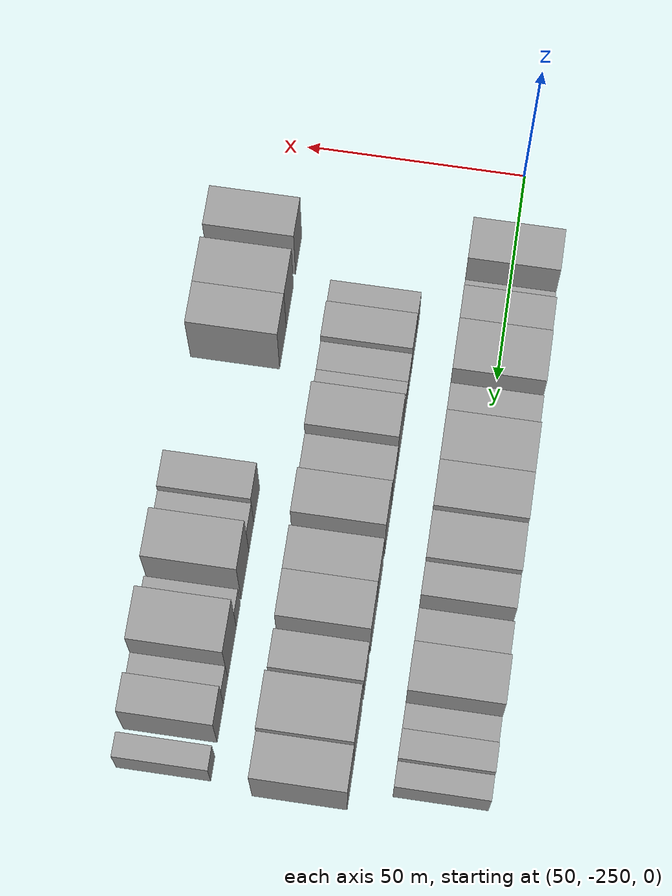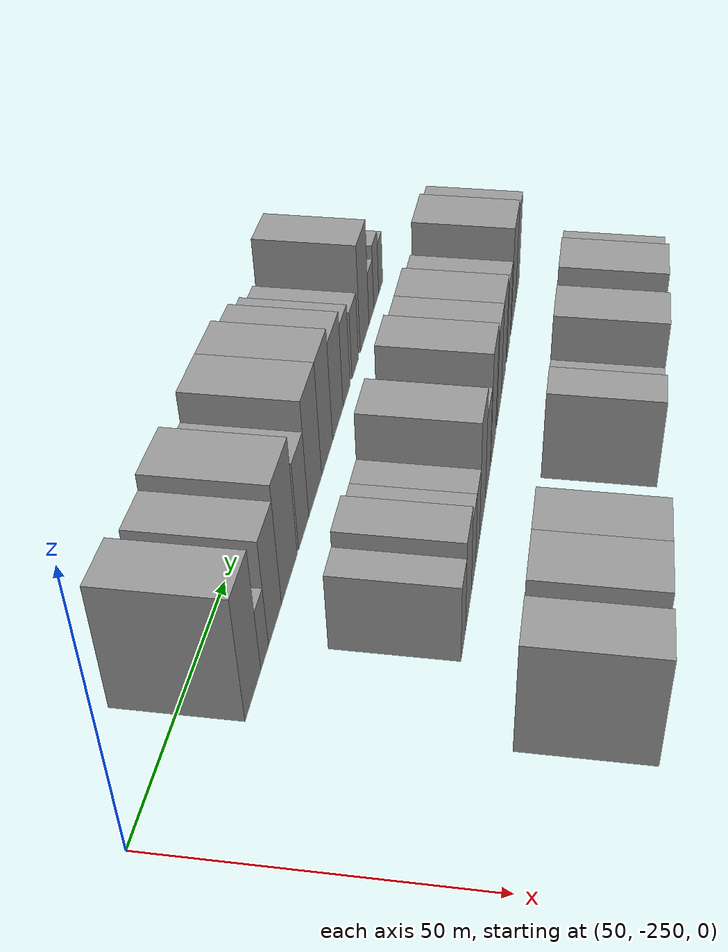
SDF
<sdf version="1.6">
 <world name="default">
  <model name="building_15">
   <static>1</static>
   <pose>50.0000 -222.4630 0 0.000000 0.000000 0.000000</pose>
   <link name="link">
    <pose>0 0 12.00 0 0 0</pose>
    <collision name="collision"><geometry><box><size>20.0000 9.6509 24.0000</size></box></geometry></collision>
    <visual name="visual">
     <cast_shadows>0</cast_shadows>
     <geometry><box><size>20.0000 9.6509 24.0000</size></box></geometry>
     <material>
      <script>
       <uri>model://grey_wall/materials/scripts</uri>
       <uri>model://grey_wall/materials/textures</uri>
       <name>vrc/grey_wall</name>
      </script>
     </material>
    </visual>
   </link>
  </model>
  <model name="building_16">
   <static>1</static>
   <pose>50.0000 -215.1452 0 0.000000 0.000000 0.000000</pose>
   <link name="link">
    <pose>0 0 6.00 0 0 0</pose>
    <collision name="collision"><geometry><box><size>20.0000 4.9846 12.0000</size></box></geometry></collision>
    <visual name="visual">
     <cast_shadows>0</cast_shadows>
     <geometry><box><size>20.0000 4.9846 12.0000</size></box></geometry>
     <material>
      <script>
       <uri>model://grey_wall/materials/scripts</uri>
       <uri>model://grey_wall/materials/textures</uri>
       <name>vrc/grey_wall</name>
      </script>
     </material>
    </visual>
   </link>
  </model>
  <model name="building_17">
   <static>1</static>
   <pose>50.0000 -208.2142 0 0.000000 0.000000 0.000000</pose>
   <link name="link">
    <pose>0 0 10.50 0 0 0</pose>
    <collision name="collision"><geometry><box><size>20.0000 8.8775 21.0000</size></box></geometry></collision>
    <visual name="visual">
     <cast_shadows>0</cast_shadows>
     <geometry><box><size>20.0000 8.8775 21.0000</size></box></geometry>
     <material>
      <script>
       <uri>model://grey_wall/materials/scripts</uri>
       <uri>model://grey_wall/materials/textures</uri>
       <name>vrc/grey_wall</name>
      </script>
     </material>
    </visual>
   </link>
  </model>
  <model name="building_18">
   <static>1</static>
   <pose>50.0000 -197.9803 0 0.000000 0.000000 0.000000</pose>
   <link name="link">
    <pose>0 0 12.00 0 0 0</pose>
    <collision name="collision"><geometry><box><size>20.0000 11.5903 24.0000</size></box></geometry></collision>
    <visual name="visual">
     <cast_shadows>0</cast_shadows>
     <geometry><box><size>20.0000 11.5903 24.0000</size></box></geometry>
     <material>
      <script>
       <uri>model://grey_wall/materials/scripts</uri>
       <uri>model://grey_wall/materials/textures</uri>
       <name>vrc/grey_wall</name>
      </script>
     </material>
    </visual>
   </link>
  </model>
  <model name="building_19">
   <static>1</static>
   <pose>50.0000 -187.0728 0 0.000000 0.000000 0.000000</pose>
   <link name="link">
    <pose>0 0 9.00 0 0 0</pose>
    <collision name="collision"><geometry><box><size>20.0000 8.2246 18.0000</size></box></geometry></collision>
    <visual name="visual">
     <cast_shadows>0</cast_shadows>
     <geometry><box><size>20.0000 8.2246 18.0000</size></box></geometry>
     <material>
      <script>
       <uri>model://grey_wall/materials/scripts</uri>
       <uri>model://grey_wall/materials/textures</uri>
       <name>vrc/grey_wall</name>
      </script>
     </material>
    </visual>
   </link>
  </model>
  <model name="building_20">
   <static>1</static>
   <pose>50.0000 -177.4510 0 0.000000 0.000000 0.000000</pose>
   <link name="link">
    <pose>0 0 12.00 0 0 0</pose>
    <collision name="collision"><geometry><box><size>20.0000 11.0190 24.0000</size></box></geometry></collision>
    <visual name="visual">
     <cast_shadows>0</cast_shadows>
     <geometry><box><size>20.0000 11.0190 24.0000</size></box></geometry>
     <material>
      <script>
       <uri>model://grey_wall/materials/scripts</uri>
       <uri>model://grey_wall/materials/textures</uri>
       <name>vrc/grey_wall</name>
      </script>
     </material>
    </visual>
   </link>
  </model>
  <model name="building_21">
   <static>1</static>
   <pose>50.0000 -166.8628 0 0.000000 0.000000 0.000000</pose>
   <link name="link">
    <pose>0 0 12.00 0 0 0</pose>
    <collision name="collision"><geometry><box><size>20.0000 10.1574 24.0000</size></box></geometry></collision>
    <visual name="visual">
     <cast_shadows>0</cast_shadows>
     <geometry><box><size>20.0000 10.1574 24.0000</size></box></geometry>
     <material>
      <script>
       <uri>model://grey_wall/materials/scripts</uri>
       <uri>model://grey_wall/materials/textures</uri>
       <name>vrc/grey_wall</name>
      </script>
     </material>
    </visual>
   </link>
  </model>
  <model name="building_22">
   <static>1</static>
   <pose>50.0000 -156.6081 0 0.000000 0.000000 0.000000</pose>
   <link name="link">
    <pose>0 0 10.50 0 0 0</pose>
    <collision name="collision"><geometry><box><size>20.0000 10.3520 21.0000</size></box></geometry></collision>
    <visual name="visual">
     <cast_shadows>0</cast_shadows>
     <geometry><box><size>20.0000 10.3520 21.0000</size></box></geometry>
     <material>
      <script>
       <uri>model://grey_wall/materials/scripts</uri>
       <uri>model://grey_wall/materials/textures</uri>
       <name>vrc/grey_wall</name>
      </script>
     </material>
    </visual>
   </link>
  </model>
  <model name="building_23">
   <static>1</static>
   <pose>50.0000 -147.7831 0 0.000000 0.000000 0.000000</pose>
   <link name="link">
    <pose>0 0 9.00 0 0 0</pose>
    <collision name="collision"><geometry><box><size>20.0000 7.2980 18.0000</size></box></geometry></collision>
    <visual name="visual">
     <cast_shadows>0</cast_shadows>
     <geometry><box><size>20.0000 7.2980 18.0000</size></box></geometry>
     <material>
      <script>
       <uri>model://grey_wall/materials/scripts</uri>
       <uri>model://grey_wall/materials/textures</uri>
       <name>vrc/grey_wall</name>
      </script>
     </material>
    </visual>
   </link>
  </model>
  <model name="building_24">
   <static>1</static>
   <pose>50.0000 -138.5354 0 0.000000 0.000000 0.000000</pose>
   <link name="link">
    <pose>0 0 7.50 0 0 0</pose>
    <collision name="collision"><geometry><box><size>20.0000 7.1975 15.0000</size></box></geometry></collision>
    <visual name="visual">
     <cast_shadows>0</cast_shadows>
     <geometry><box><size>20.0000 7.1975 15.0000</size></box></geometry>
     <material>
      <script>
       <uri>model://grey_wall/materials/scripts</uri>
       <uri>model://grey_wall/materials/textures</uri>
       <name>vrc/grey_wall</name>
      </script>
     </material>
    </visual>
   </link>
  </model>
  <model name="building_25">
   <static>1</static>
   <pose>50.0000 -127.7857 0 0.000000 0.000000 0.000000</pose>
   <link name="link">
    <pose>0 0 12.00 0 0 0</pose>
    <collision name="collision"><geometry><box><size>20.0000 10.3019 24.0000</size></box></geometry></collision>
    <visual name="visual">
     <cast_shadows>0</cast_shadows>
     <geometry><box><size>20.0000 10.3019 24.0000</size></box></geometry>
     <material>
      <script>
       <uri>model://grey_wall/materials/scripts</uri>
       <uri>model://grey_wall/materials/textures</uri>
       <name>vrc/grey_wall</name>
      </script>
     </material>
    </visual>
   </link>
  </model>
  <model name="building_26">
   <static>1</static>
   <pose>50.0000 -119.6560 0 0.000000 0.000000 0.000000</pose>
   <link name="link">
    <pose>0 0 6.00 0 0 0</pose>
    <collision name="collision"><geometry><box><size>20.0000 5.9576 12.0000</size></box></geometry></collision>
    <visual name="visual">
     <cast_shadows>0</cast_shadows>
     <geometry><box><size>20.0000 5.9576 12.0000</size></box></geometry>
     <material>
      <script>
       <uri>model://grey_wall/materials/scripts</uri>
       <uri>model://grey_wall/materials/textures</uri>
       <name>vrc/grey_wall</name>
      </script>
     </material>
    </visual>
   </link>
  </model>
  <model name="building_27">
   <static>1</static>
   <pose>50.0000 -113.5706 0 0.000000 0.000000 0.000000</pose>
   <link name="link">
    <pose>0 0 7.50 0 0 0</pose>
    <collision name="collision"><geometry><box><size>20.0000 6.2130 15.0000</size></box></geometry></collision>
    <visual name="visual">
     <cast_shadows>0</cast_shadows>
     <geometry><box><size>20.0000 6.2130 15.0000</size></box></geometry>
     <material>
      <script>
       <uri>model://grey_wall/materials/scripts</uri>
       <uri>model://grey_wall/materials/textures</uri>
       <name>vrc/grey_wall</name>
      </script>
     </material>
    </visual>
   </link>
  </model>
  <model name="building_28">
   <static>1</static>
   <pose>50.0000 -107.7802 0 0.000000 0.000000 0.000000</pose>
   <link name="link">
    <pose>0 0 6.00 0 0 0</pose>
    <collision name="collision"><geometry><box><size>20.0000 5.3678 12.0000</size></box></geometry></collision>
    <visual name="visual">
     <cast_shadows>0</cast_shadows>
     <geometry><box><size>20.0000 5.3678 12.0000</size></box></geometry>
     <material>
      <script>
       <uri>model://grey_wall/materials/scripts</uri>
       <uri>model://grey_wall/materials/textures</uri>
       <name>vrc/grey_wall</name>
      </script>
     </material>
    </visual>
   </link>
  </model>
  <model name="building_91">
   <static>1</static>
   <pose>79.0000 -208.9390 0 0.000000 0.000000 0.000000</pose>
   <link name="link">
    <pose>0 0 7.50 0 0 0</pose>
    <collision name="collision"><geometry><box><size>20.0000 6.1841 15.0000</size></box></geometry></collision>
    <visual name="visual">
     <cast_shadows>0</cast_shadows>
     <geometry><box><size>20.0000 6.1841 15.0000</size></box></geometry>
     <material>
      <script>
       <uri>model://grey_wall/materials/scripts</uri>
       <uri>model://grey_wall/materials/textures</uri>
       <name>vrc/grey_wall</name>
      </script>
     </material>
    </visual>
   </link>
  </model>
  <model name="building_92">
   <static>1</static>
   <pose>79.0000 -201.7311 0 0.000000 0.000000 0.000000</pose>
   <link name="link">
    <pose>0 0 9.00 0 0 0</pose>
    <collision name="collision"><geometry><box><size>20.0000 8.2317 18.0000</size></box></geometry></collision>
    <visual name="visual">
     <cast_shadows>0</cast_shadows>
     <geometry><box><size>20.0000 8.2317 18.0000</size></box></geometry>
     <material>
      <script>
       <uri>model://grey_wall/materials/scripts</uri>
       <uri>model://grey_wall/materials/textures</uri>
       <name>vrc/grey_wall</name>
      </script>
     </material>
    </visual>
   </link>
  </model>
  <model name="building_93">
   <static>1</static>
   <pose>79.0000 -194.3447 0 0.000000 0.000000 0.000000</pose>
   <link name="link">
    <pose>0 0 7.50 0 0 0</pose>
    <collision name="collision"><geometry><box><size>20.0000 6.5413 15.0000</size></box></geometry></collision>
    <visual name="visual">
     <cast_shadows>0</cast_shadows>
     <geometry><box><size>20.0000 6.5413 15.0000</size></box></geometry>
     <material>
      <script>
       <uri>model://grey_wall/materials/scripts</uri>
       <uri>model://grey_wall/materials/textures</uri>
       <name>vrc/grey_wall</name>
      </script>
     </material>
    </visual>
   </link>
  </model>
  <model name="building_94">
   <static>1</static>
   <pose>79.0000 -188.0424 0 0.000000 0.000000 0.000000</pose>
   <link name="link">
    <pose>0 0 7.50 0 0 0</pose>
    <collision name="collision"><geometry><box><size>20.0000 6.0633 15.0000</size></box></geometry></collision>
    <visual name="visual">
     <cast_shadows>0</cast_shadows>
     <geometry><box><size>20.0000 6.0633 15.0000</size></box></geometry>
     <material>
      <script>
       <uri>model://grey_wall/materials/scripts</uri>
       <uri>model://grey_wall/materials/textures</uri>
       <name>vrc/grey_wall</name>
      </script>
     </material>
    </visual>
   </link>
  </model>
  <model name="building_95">
   <static>1</static>
   <pose>79.0000 -180.2029 0 0.000000 0.000000 0.000000</pose>
   <link name="link">
    <pose>0 0 12.00 0 0 0</pose>
    <collision name="collision"><geometry><box><size>20.0000 9.6157 24.0000</size></box></geometry></collision>
    <visual name="visual">
     <cast_shadows>0</cast_shadows>
     <geometry><box><size>20.0000 9.6157 24.0000</size></box></geometry>
     <material>
      <script>
       <uri>model://grey_wall/materials/scripts</uri>
       <uri>model://grey_wall/materials/textures</uri>
       <name>vrc/grey_wall</name>
      </script>
     </material>
    </visual>
   </link>
  </model>
  <model name="building_96">
   <static>1</static>
   <pose>79.0000 -171.1014 0 0.000000 0.000000 0.000000</pose>
   <link name="link">
    <pose>0 0 9.00 0 0 0</pose>
    <collision name="collision"><geometry><box><size>20.0000 8.5872 18.0000</size></box></geometry></collision>
    <visual name="visual">
     <cast_shadows>0</cast_shadows>
     <geometry><box><size>20.0000 8.5872 18.0000</size></box></geometry>
     <material>
      <script>
       <uri>model://grey_wall/materials/scripts</uri>
       <uri>model://grey_wall/materials/textures</uri>
       <name>vrc/grey_wall</name>
      </script>
     </material>
    </visual>
   </link>
  </model>
  <model name="building_97">
   <static>1</static>
   <pose>79.0000 -160.9736 0 0.000000 0.000000 0.000000</pose>
   <link name="link">
    <pose>0 0 12.00 0 0 0</pose>
    <collision name="collision"><geometry><box><size>20.0000 9.6682 24.0000</size></box></geometry></collision>
    <visual name="visual">
     <cast_shadows>0</cast_shadows>
     <geometry><box><size>20.0000 9.6682 24.0000</size></box></geometry>
     <material>
      <script>
       <uri>model://grey_wall/materials/scripts</uri>
       <uri>model://grey_wall/materials/textures</uri>
       <name>vrc/grey_wall</name>
      </script>
     </material>
    </visual>
   </link>
  </model>
  <model name="building_98">
   <static>1</static>
   <pose>79.0000 -149.4787 0 0.000000 0.000000 0.000000</pose>
   <link name="link">
    <pose>0 0 10.50 0 0 0</pose>
    <collision name="collision"><geometry><box><size>20.0000 9.3216 21.0000</size></box></geometry></collision>
    <visual name="visual">
     <cast_shadows>0</cast_shadows>
     <geometry><box><size>20.0000 9.3216 21.0000</size></box></geometry>
     <material>
      <script>
       <uri>model://grey_wall/materials/scripts</uri>
       <uri>model://grey_wall/materials/textures</uri>
       <name>vrc/grey_wall</name>
      </script>
     </material>
    </visual>
   </link>
  </model>
  <model name="building_99">
   <static>1</static>
   <pose>79.0000 -139.7775 0 0.000000 0.000000 0.000000</pose>
   <link name="link">
    <pose>0 0 10.50 0 0 0</pose>
    <collision name="collision"><geometry><box><size>20.0000 10.0808 21.0000</size></box></geometry></collision>
    <visual name="visual">
     <cast_shadows>0</cast_shadows>
     <geometry><box><size>20.0000 10.0808 21.0000</size></box></geometry>
     <material>
      <script>
       <uri>model://grey_wall/materials/scripts</uri>
       <uri>model://grey_wall/materials/textures</uri>
       <name>vrc/grey_wall</name>
      </script>
     </material>
    </visual>
   </link>
  </model>
  <model name="building_100">
   <static>1</static>
   <pose>79.0000 -128.6307 0 0.000000 0.000000 0.000000</pose>
   <link name="link">
    <pose>0 0 9.00 0 0 0</pose>
    <collision name="collision"><geometry><box><size>20.0000 8.2130 18.0000</size></box></geometry></collision>
    <visual name="visual">
     <cast_shadows>0</cast_shadows>
     <geometry><box><size>20.0000 8.2130 18.0000</size></box></geometry>
     <material>
      <script>
       <uri>model://grey_wall/materials/scripts</uri>
       <uri>model://grey_wall/materials/textures</uri>
       <name>vrc/grey_wall</name>
      </script>
     </material>
    </visual>
   </link>
  </model>
  <model name="building_101">
   <static>1</static>
   <pose>79.0000 -116.5751 0 0.000000 0.000000 0.000000</pose>
   <link name="link">
    <pose>0 0 12.00 0 0 0</pose>
    <collision name="collision"><geometry><box><size>20.0000 11.8980 24.0000</size></box></geometry></collision>
    <visual name="visual">
     <cast_shadows>0</cast_shadows>
     <geometry><box><size>20.0000 11.8980 24.0000</size></box></geometry>
     <material>
      <script>
       <uri>model://grey_wall/materials/scripts</uri>
       <uri>model://grey_wall/materials/textures</uri>
       <name>vrc/grey_wall</name>
      </script>
     </material>
    </visual>
   </link>
  </model>
  <model name="building_102">
   <static>1</static>
   <pose>79.0000 -105.8196 0 0.000000 0.000000 0.000000</pose>
   <link name="link">
    <pose>0 0 10.50 0 0 0</pose>
    <collision name="collision"><geometry><box><size>20.0000 9.6131 21.0000</size></box></geometry></collision>
    <visual name="visual">
     <cast_shadows>0</cast_shadows>
     <geometry><box><size>20.0000 9.6131 21.0000</size></box></geometry>
     <material>
      <script>
       <uri>model://grey_wall/materials/scripts</uri>
       <uri>model://grey_wall/materials/textures</uri>
       <name>vrc/grey_wall</name>
      </script>
     </material>
    </visual>
   </link>
  </model>
  <model name="building_163">
   <static>1</static>
   <pose>108.0000 -223.0767 0 0.000000 0.000000 0.000000</pose>
   <link name="link">
    <pose>0 0 10.50 0 0 0</pose>
    <collision name="collision"><geometry><box><size>20.0000 9.2876 21.0000</size></box></geometry></collision>
    <visual name="visual">
     <cast_shadows>0</cast_shadows>
     <geometry><box><size>20.0000 9.2876 21.0000</size></box></geometry>
     <material>
      <script>
       <uri>model://grey_wall/materials/scripts</uri>
       <uri>model://grey_wall/materials/textures</uri>
       <name>vrc/grey_wall</name>
      </script>
     </material>
    </visual>
   </link>
  </model>
  <model name="building_164">
   <static>1</static>
   <pose>108.0000 -210.1952 0 0.000000 0.000000 0.000000</pose>
   <link name="link">
    <pose>0 0 10.50 0 0 0</pose>
    <collision name="collision"><geometry><box><size>20.0000 10.4753 21.0000</size></box></geometry></collision>
    <visual name="visual">
     <cast_shadows>0</cast_shadows>
     <geometry><box><size>20.0000 10.4753 21.0000</size></box></geometry>
     <material>
      <script>
       <uri>model://grey_wall/materials/scripts</uri>
       <uri>model://grey_wall/materials/textures</uri>
       <name>vrc/grey_wall</name>
      </script>
     </material>
    </visual>
   </link>
  </model>
  <model name="building_165">
   <static>1</static>
   <pose>108.0000 -200.1954 0 0.000000 0.000000 0.000000</pose>
   <link name="link">
    <pose>0 0 10.50 0 0 0</pose>
    <collision name="collision"><geometry><box><size>20.0000 9.5244 21.0000</size></box></geometry></collision>
    <visual name="visual">
     <cast_shadows>0</cast_shadows>
     <geometry><box><size>20.0000 9.5244 21.0000</size></box></geometry>
     <material>
      <script>
       <uri>model://grey_wall/materials/scripts</uri>
       <uri>model://grey_wall/materials/textures</uri>
       <name>vrc/grey_wall</name>
      </script>
     </material>
    </visual>
   </link>
  </model>
  <model name="building_166">
   <static>1</static>
   <pose>108.0000 -163.3730 0 0.000000 0.000000 0.000000</pose>
   <link name="link">
    <pose>0 0 9.00 0 0 0</pose>
    <collision name="collision"><geometry><box><size>20.0000 8.0401 18.0000</size></box></geometry></collision>
    <visual name="visual">
     <cast_shadows>0</cast_shadows>
     <geometry><box><size>20.0000 8.0401 18.0000</size></box></geometry>
     <material>
      <script>
       <uri>model://grey_wall/materials/scripts</uri>
       <uri>model://grey_wall/materials/textures</uri>
       <name>vrc/grey_wall</name>
      </script>
     </material>
    </visual>
   </link>
  </model>
  <model name="building_167">
   <static>1</static>
   <pose>108.0000 -156.0600 0 0.000000 0.000000 0.000000</pose>
   <link name="link">
    <pose>0 0 7.50 0 0 0</pose>
    <collision name="collision"><geometry><box><size>20.0000 6.5861 15.0000</size></box></geometry></collision>
    <visual name="visual">
     <cast_shadows>0</cast_shadows>
     <geometry><box><size>20.0000 6.5861 15.0000</size></box></geometry>
     <material>
      <script>
       <uri>model://grey_wall/materials/scripts</uri>
       <uri>model://grey_wall/materials/textures</uri>
       <name>vrc/grey_wall</name>
      </script>
     </material>
    </visual>
   </link>
  </model>
  <model name="building_168">
   <static>1</static>
   <pose>108.0000 -147.5309 0 0.000000 0.000000 0.000000</pose>
   <link name="link">
    <pose>0 0 12.00 0 0 0</pose>
    <collision name="collision"><geometry><box><size>20.0000 10.4721 24.0000</size></box></geometry></collision>
    <visual name="visual">
     <cast_shadows>0</cast_shadows>
     <geometry><box><size>20.0000 10.4721 24.0000</size></box></geometry>
     <material>
      <script>
       <uri>model://grey_wall/materials/scripts</uri>
       <uri>model://grey_wall/materials/textures</uri>
       <name>vrc/grey_wall</name>
      </script>
     </material>
    </visual>
   </link>
  </model>
  <model name="building_169">
   <static>1</static>
   <pose>108.0000 -138.6159 0 0.000000 0.000000 0.000000</pose>
   <link name="link">
    <pose>0 0 6.00 0 0 0</pose>
    <collision name="collision"><geometry><box><size>20.0000 5.3578 12.0000</size></box></geometry></collision>
    <visual name="visual">
     <cast_shadows>0</cast_shadows>
     <geometry><box><size>20.0000 5.3578 12.0000</size></box></geometry>
     <material>
      <script>
       <uri>model://grey_wall/materials/scripts</uri>
       <uri>model://grey_wall/materials/textures</uri>
       <name>vrc/grey_wall</name>
      </script>
     </material>
    </visual>
   </link>
  </model>
  <model name="building_170">
   <static>1</static>
   <pose>108.0000 -130.3634 0 0.000000 0.000000 0.000000</pose>
   <link name="link">
    <pose>0 0 12.00 0 0 0</pose>
    <collision name="collision"><geometry><box><size>20.0000 11.1472 24.0000</size></box></geometry></collision>
    <visual name="visual">
     <cast_shadows>0</cast_shadows>
     <geometry><box><size>20.0000 11.1472 24.0000</size></box></geometry>
     <material>
      <script>
       <uri>model://grey_wall/materials/scripts</uri>
       <uri>model://grey_wall/materials/textures</uri>
       <name>vrc/grey_wall</name>
      </script>
     </material>
    </visual>
   </link>
  </model>
  <model name="building_171">
   <static>1</static>
   <pose>108.0000 -121.9643 0 0.000000 0.000000 0.000000</pose>
   <link name="link">
    <pose>0 0 6.00 0 0 0</pose>
    <collision name="collision"><geometry><box><size>20.0000 5.6510 12.0000</size></box></geometry></collision>
    <visual name="visual">
     <cast_shadows>0</cast_shadows>
     <geometry><box><size>20.0000 5.6510 12.0000</size></box></geometry>
     <material>
      <script>
       <uri>model://grey_wall/materials/scripts</uri>
       <uri>model://grey_wall/materials/textures</uri>
       <name>vrc/grey_wall</name>
      </script>
     </material>
    </visual>
   </link>
  </model>
  <model name="building_172">
   <static>1</static>
   <pose>108.0000 -115.0744 0 0.000000 0.000000 0.000000</pose>
   <link name="link">
    <pose>0 0 9.00 0 0 0</pose>
    <collision name="collision"><geometry><box><size>20.0000 8.1289 18.0000</size></box></geometry></collision>
    <visual name="visual">
     <cast_shadows>0</cast_shadows>
     <geometry><box><size>20.0000 8.1289 18.0000</size></box></geometry>
     <material>
      <script>
       <uri>model://grey_wall/materials/scripts</uri>
       <uri>model://grey_wall/materials/textures</uri>
       <name>vrc/grey_wall</name>
      </script>
     </material>
    </visual>
   </link>
  </model>
  <model name="building_173">
   <static>1</static>
   <pose>108.0000 -105.4021 0 0.000000 0.000000 0.000000</pose>
   <link name="link">
    <pose>0 0 6.00 0 0 0</pose>
    <collision name="collision"><geometry><box><size>20.0000 5.2157 12.0000</size></box></geometry></collision>
    <visual name="visual">
     <cast_shadows>0</cast_shadows>
     <geometry><box><size>20.0000 5.2157 12.0000</size></box></geometry>
     <material>
      <script>
       <uri>model://grey_wall/materials/scripts</uri>
       <uri>model://grey_wall/materials/textures</uri>
       <name>vrc/grey_wall</name>
      </script>
     </material>
    </visual>
   </link>
  </model>
 </world>
</sdf>
